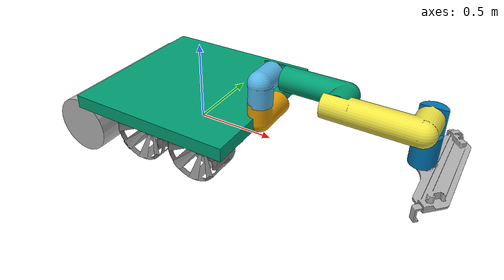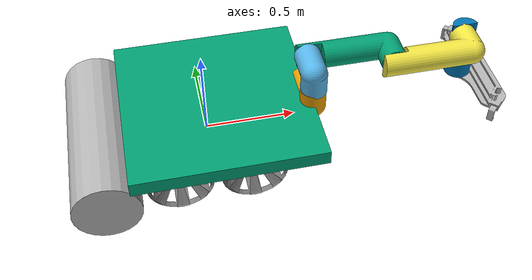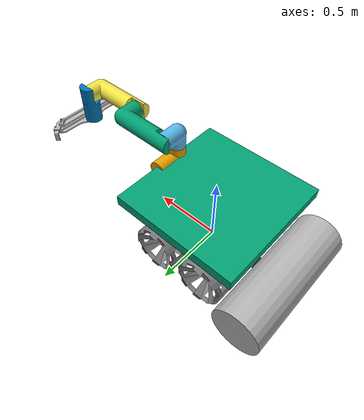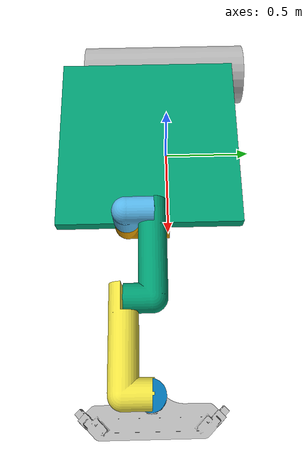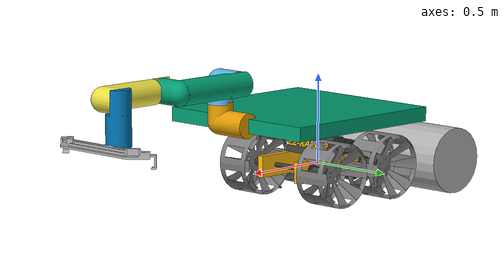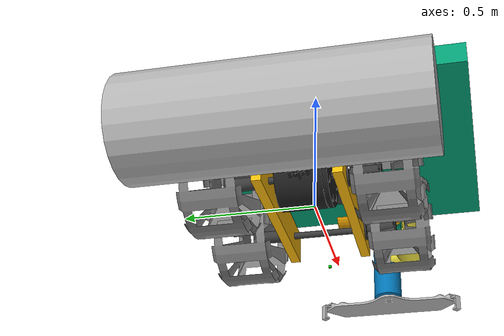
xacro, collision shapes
<?xml version='1.0'?>

<robot name="ezrassor" xmlns:xacro="http://www.ros.org/wiki/xacro">

  <xacro:property name="cameraSize" value="0.01"/>
  <xacro:property name="cameraMass" value="0.1"/>

  <xacro:include filename="$(find ezrassor_sim_description)/urdf/ezrassor.gazebo" />
  <xacro:include filename="$(find ezrassor_sim_description)/urdf/materials.xacro" />
  <xacro:include filename="$(find ezrassor_sim_description)/urdf/macros.xacro" />

  <!--Below are all of the robot's Links/-->
  <link name='base_link'>
   <pose>0 0 0 0 0 0</pose>
  </link>

  <link name='body'>
    <pose>0 0 0 0 0 0</pose>
    <inertial>
      <mass value="15.0"/>
      <origin xyz="0 0 0" rpy=" 0 0 0"/>
      <inertia
          ixx="0.5" ixy="0" ixz="0"
          iyy="1.0" iyz="0"
          izz="0.1"
      />
    </inertial>
    <collision name='collision'>
      <origin xyz="0 0 0" rpy=" 0 0 0"/>
      <geometry>
        <base_unit/>
      </geometry>
    </collision>
    <visual name='base_link_visual'>
      <origin xyz="0 0 0" rpy=" 0 0 0"/>
      <geometry>
        <base_unit/>
      </geometry>
    </visual>
  </link>

  <link name="left_wheel_front">
    <collision name="collision">
      <origin xyz="0 0 0" rpy="0 0 0"/>
      <geometry>
        <robot_wheel />
      </geometry>
      <surface>
        <friction>
          <mu> .6 </mu>
          <mu2> .6 </mu2>
        </friction>
      </surface>
      <surface>
        <friction>
          <mu> .6 </mu>
          <mu2> .6 </mu2>
        </friction>
      </surface>
    </collision>
    <visual name="left_wheel_front_visual">
      <origin xyz="0 0 0" rpy="0 0 0"/>
      <geometry>
        <robot_wheel />
      </geometry>
    </visual>
    <inertial>
      <origin xyz="0 0 0" rpy="0 0 0" />
      <mass value="5"/>
      <cylinder_inertia m="5" r="0.18" h="0.2"/>
    </inertial>
  </link>

  <link name="right_wheel_front">
    <collision name="collision">
      <origin xyz="0 0 0" rpy="0 0 3.14159"/>
      <geometry>
        <robot_wheel />
      </geometry>
      <surface>
        <friction>
        <mu> .6 </mu>
        <mu2> .6 </mu2>
        </friction>
      </surface>
    </collision>
    <visual name="right_wheel_front_visual">
      <origin xyz="0 0 0" rpy="0 0 3.14159"/>
      <geometry>
        <robot_wheel />
      </geometry>
    </visual>
    <inertial>
      <origin xyz="0 0 0" rpy="0 0 3.14159"/>
      <mass value="5"/>
      <cylinder_inertia m="5" r="0.18" h="0.2"/>
    </inertial>
  </link>

  <link name="left_wheel_back">
    <collision name="collision">
      <origin xyz="0 0 0" rpy="0 0 0"/>
      <geometry>
        <robot_wheel />
      </geometry>
        <surface>
          <friction>
            <mu> .6 </mu>
            <mu2> .6 </mu2>
         </friction>
        </surface>
    </collision>
    <visual name="left_wheel_back_visual">
      <origin xyz="0 0 0" rpy="0 0 0"/>
      <geometry>
        <robot_wheel />
      </geometry>
    </visual>
    <inertial>
      <origin xyz="0 0 0" rpy="0 0 0"/>
      <mass value="5"/>
      <cylinder_inertia m="5" r="0.18" h="0.2"/>
    </inertial>
  </link>

  <link name="right_wheel_back">
    <collision name="collision">
      <origin xyz="0 0 0" rpy="0 0 3.14159"/>
      <geometry>
        <robot_wheel />
      </geometry>
      <surface>
        <friction>
          <mu> .6 </mu>
          <mu2> .6 </mu2>
        </friction>
      </surface>
    </collision>
    <visual name="right_wheel_back_visual">
      <origin xyz="0 0 0" rpy="0 0 3.14159"/>
      <geometry>
        <robot_wheel />
      </geometry>
    </visual>
    <inertial>
      <origin xyz="0 0 0" rpy="0 0 3.14159"/>
      <mass value="5"/>
      <cylinder_inertia m="5" r="0.18" h="0.2"/>
    </inertial>
  </link>

  <link name="arm_back">
    <collision name="collision">
      <origin xyz="0 0 0" rpy="3.1415 0 3.1415"/>
      <geometry>
        <drum_arm />
      </geometry>
    </collision>
    <visual name="visual">
      <origin xyz="0 0 0" rpy="3.1415 0 3.1415"/>
      <geometry>
        <drum_arm />
      </geometry>
    </visual>
    <inertial>
      <origin xyz="0 0 0" rpy="0 0 3.1415"/>
      <mass value="5"/>
      <cylinder_inertia m="5" r="0.05" h="0.3"/>
      <inertia
        ixx="1.0" ixy="0.0" ixz="0.0"
        iyy="1.0" iyz="0.0"
        izz="1.0"/>
    </inertial>
  </link>

  <link name="drum_back">
     <collision name="collision">
      <origin xyz="0 0 0" rpy="0 1.5707 1.5707"/>
      <geometry>
        <cylinder radius="0.1839" length="1.0"/>
      </geometry>
    </collision>
    <visual name="drum_back">
      <origin xyz="0 0 0" rpy="3.1415 0 3.14159"/>
      <geometry>
        <robot_arm_drum />
      </geometry>
    </visual>
    <inertial>
      <origin xyz="0 0 0" rpy="0 0 3.14159"/>
      <mass value="5"/>
      <cylinder_inertia m="5" r="0.1839" h="1.0"/>
    </inertial>
  </link>

  <!-- Arm links -->

  <link name='link1'>
    <pose>0 0 0 0 0 0</pose>
    <inertial>
      <mass value="1.0"/>
      <origin xyz="0 0 0" rpy=" 0 0 0"/>
      <inertia
          ixx="0" ixy="0" ixz="0"
          iyy="0" iyz="0"
          izz="0"
      />
    </inertial>
    <collision name='collision'>
      <origin xyz="0 0 0" rpy=" 0 0 0"/>
      <geometry>
        <link1/>
      </geometry>
    </collision>
    <visual name='link1'>
      <origin xyz="0 0 0" rpy=" 0 0 0"/>
      <geometry>
        <link1/>
      </geometry>
    </visual>
  </link>

  <link name='link2'>
    <pose>0 0 0 0 0 0</pose>
    <inertial>
      <mass value="1.0"/>
      <origin xyz="0 0 0" rpy=" 0 0 0"/>
      <inertia
          ixx="0" ixy="0" ixz="0"
          iyy="0" iyz="0"
          izz="0"
      />
    </inertial>
    <collision name='collision'>
      <origin xyz="0 0.08 0.135" rpy=" 0 0 0"/>
      <geometry>
        <link2/>
      </geometry>
    </collision>
    <visual name='link2'>
      <origin xyz="0 0.08 0.135" rpy=" 0 0 0"/>
      <geometry>
        <link2/>
      </geometry>
    </visual>
  </link>

  <link name='link3'>
    <pose>0 0 0 0 0 0</pose>
    <inertial>
      <mass value="1.0"/>
      <origin xyz="0 0 0" rpy=" 0 0 0"/>
      <inertia
          ixx="0" ixy="0" ixz="0"
          iyy="0" iyz="0"
          izz="0"
      />
    </inertial>
    <collision name='collision'>
      <origin xyz="0.25 0.1 0" rpy=" 0 0 0"/>
      <geometry>
        <link3/>
      </geometry>
    </collision>
    <visual name='link3'>
      <origin xyz="0.25 0.1 0" rpy=" 0 0 0"/>
      <geometry>
        <link3/>
      </geometry>
    </visual>
  </link>

  <link name='link4'>
    <pose>0 0 0 0 0 0</pose>
    <inertial>
      <mass value="1.0"/>
      <origin xyz="0 0 0" rpy=" 0 0 0"/>
      <inertia
          ixx="0" ixy="0" ixz="0"
          iyy="0" iyz="0"
          izz="0"
      />
    </inertial>
    <collision name='collision'>
      <origin xyz="0.23 0 0" rpy=" 0 0 0"/>
      <geometry>
        <link4/>
      </geometry>
    </collision>
    <visual name='link4'>
      <origin xyz="0.23 0 0" rpy=" 0 0 0"/>
      <geometry>
        <link4/>
      </geometry>
    </visual>
  </link>

  <link name='link5'>
    <pose>0 0 0 0 0 0</pose>
    <inertial>
      <mass value="1.0"/>
      <origin xyz="0 0 0" rpy=" 0 0 0"/>
      <inertia
          ixx="0" ixy="0" ixz="0"
          iyy="0" iyz="0"
          izz="0"
      />
    </inertial>
    <collision name='collision'>
      <origin xyz="0 0.12 0" rpy=" 0 0 0"/>
      <geometry>
        <link5/>
      </geometry>
    </collision>
    <visual name='link5'>
      <origin xyz="0 0.12 0" rpy=" 0 0 0"/>
      <geometry>
        <link5/>
      </geometry>
    </visual>
  </link>

  <link name='link6'>
    <pose>0 0 0 0 0 0</pose>
    <inertial>
      <mass value="1.0"/>
      <origin xyz="0 0 0" rpy=" 0 0 0"/>
      <inertia
          ixx="0" ixy="0" ixz="0"
          iyy="0" iyz="0"
          izz="0"
      />
    </inertial>
    <collision name='collision'>
      <origin xyz="0.096 0 -0.24" rpy=" 0 0 0"/>
      <geometry>
        <link6/>
      </geometry>
    </collision>
    <visual name='link6'>
      <origin xyz="0.096 0 -0.24" rpy=" 0 0 0"/>
      <geometry>
        <link6/>
      </geometry>
    </visual>
  </link>

  <link name='arm_camera'>
    <pose>0 0 0 0 0 0</pose>
    <inertial>
      <mass value="0.1"/>
      <origin xyz="0.0 0.0 0.0" rpy=" 0 0 0"/>
      <inertia
          ixx="0" ixy="0" ixz="0"
          iyy="0" iyz="0"
          izz="0"
      />
    </inertial>
    <visual name='arm_camera'>
      <origin xyz="0.04 0.0 -0.04" rpy=" 0 0 0"/>
      <geometry>
        <arm_camera/>
      </geometry>
    </visual>
  </link>

  <link name='grabber1'>
    <pose>0 0 0 0 0 0</pose>
    <inertial>
      <mass value="0.1"/>
      <origin xyz="0 0 0" rpy=" 0 0 0"/>
      <inertia
          ixx="0" ixy="0" ixz="0"
          iyy="0" iyz="0"
          izz="0"
      />
    </inertial>
    <collision name='collision'>
      <origin xyz="0 0 0" rpy=" 0 0 0"/>
      <geometry>
        <grabber1/>
      </geometry>
      <contact_coefficients>
        <mu>1</mu>
      </contact_coefficients>
      <surface>
        <bounce>
          <restitution_coefficient>0</restitution_coefficient>
        </bounce>
        <friction>
          <ode>
            <fdir1>0 0 0</fdir1>
            <mu>1</mu>
            <mu2>1</mu2>
            <slip1>0</slip1>
            <slip2>0</slip2>
          </ode>
        </friction>
      </surface>
    </collision>
    <visual name='grabber1'>
      <origin xyz="0 0 0" rpy=" 0 0 0"/>
      <geometry>
        <grabber1/>
      </geometry>
    </visual>
  </link>

  <link name='grabber2'>
    <pose>0 0 0 0 0 0</pose>
    <inertial>
      <mass value="0.1"/>
      <origin xyz="0 0 0" rpy=" 0 0 0"/>
      <inertia
          ixx="0" ixy="0" ixz="0"
          iyy="0" iyz="0"
          izz="0"
      />
    </inertial>
    <collision name='collision'>
      <origin xyz="0 0 0" rpy=" 0 0 0"/>
      <geometry>
        <grabber2/>
      </geometry>
      <contact_coefficients>
        <mu>1</mu>
      </contact_coefficients>
      <surface>
        <bounce>
          <restitution_coefficient>0</restitution_coefficient>
        </bounce>
        <friction>
          <ode>
            <fdir1>0 0 0</fdir1>
            <mu>1</mu>
            <mu2>1</mu2>
            <slip1>0</slip1>
            <slip2>0</slip2>
          </ode>
        </friction>
      </surface>
    </collision>
    <visual name='grabber2'>
      <origin xyz="0 0 0" rpy=" 0 0 0"/>
      <geometry>
        <grabber2/>
      </geometry>
    </visual>
  </link>

  <link name='arm_front'>
    <pose>0 0 0 0 0 0</pose>
    <inertial>
      <mass value="1.0"/>
      <origin xyz="0 0 0" rpy=" 0 0 0"/>
      <inertia
          ixx="0" ixy="0" ixz="0"
          iyy="0" iyz="0"
          izz="0"
      />
    </inertial>
    <visual name='arm_front'>
      <origin xyz="0.2 0 0" rpy=" 0 -0.60 0"/>
      <geometry>
        <drum_arm/>
      </geometry>
    </visual>
  </link>

  <link name='platform'>
    <pose>0 0 0 0 0 0</pose>
    <inertial>
      <mass value="1.0"/>
      <origin xyz="0 0 0" rpy=" 0 0 0"/>
      <inertia
          ixx="0" ixy="0" ixz="0"
          iyy="0" iyz="0"
          izz="0"
      />
    </inertial>
    <collision name='collision'>
      <origin xyz="-0.5 0 0" rpy=" 0 0 0"/>
      <geometry>
        <box size="1 1 0.08"/>
      </geometry>
      <contact_coefficients>
        <mu>1</mu>
      </contact_coefficients>
    </collision>
    <visual name='platform'>
      <origin xyz="0.1 0.06 0.1" rpy=" 0 0 0"/>
      <geometry>
        <platform/>
      </geometry>
    </visual>
  </link>

  <!-- Transmissions -->
  <transmission name="left_wheel_front_tran">
    <type>transmission_interface/SimpleTransmission</type>
    <joint name="left_wheel_front_hinge">
      <hardwareInterface>hardware_interface/VelocityJointInterface</hardwareInterface>
    </joint>
    <actuator name="left_wheel_front_motor">
      <hardwareInterface>hardware_interface/VelocityJointInterface</hardwareInterface>
      <mechanicalReduction>1</mechanicalReduction>
    </actuator>
  </transmission>

  <transmission name="left_wheel_back_tran">
    <type>transmission_interface/SimpleTransmission</type>
    <joint name="left_wheel_back_hinge">
      <hardwareInterface>hardware_interface/VelocityJointInterface</hardwareInterface>
    </joint>
    <actuator name="left_wheel_back_motor">
      <hardwareInterface>hardware_interface/VelocityJointInterface</hardwareInterface>
      <mechanicalReduction>1</mechanicalReduction>
    </actuator>
  </transmission>

  <transmission name="right_wheel_front_tran">
    <type>transmission_interface/SimpleTransmission</type>
    <joint name="right_wheel_front_hinge">
      <hardwareInterface>hardware_interface/VelocityJointInterface</hardwareInterface>
    </joint>
    <actuator name="right_wheel_front_motor">
      <hardwareInterface>hardware_interface/VelocityJointInterface</hardwareInterface>
      <mechanicalReduction>1</mechanicalReduction>
    </actuator>
  </transmission>

  <transmission name="right_wheel_back_tran">
    <type>transmission_interface/SimpleTransmission</type>
    <joint name="right_wheel_back_hinge">
      <hardwareInterface>hardware_interface/VelocityJointInterface</hardwareInterface>
    </joint>
    <actuator name="right_wheel_back_motor">
      <hardwareInterface>hardware_interface/VelocityJointInterface</hardwareInterface>
      <mechanicalReduction>1</mechanicalReduction>
    </actuator>
  </transmission>

  <transmission name="arm_back_tran">
    <type>transmission_interface/SimpleTransmission</type>
    <joint name="arm_back_hinge">
      <hardwareInterface>hardware_interface/VelocityJointInterface</hardwareInterface>
    </joint>
    <actuator name="arm_back_motor">
      <hardwareInterface>hardware_interface/VelocityJointInterface</hardwareInterface>
      <mechanicalReduction>1</mechanicalReduction>
    </actuator>
  </transmission>

  <transmission name="drum_back_hinge_tran">
    <type>transmission_interface/SimpleTransmission</type>
    <joint name="drum_back_hinge">
      <hardwareInterface>hardware_interface/VelocityJointInterface</hardwareInterface>
    </joint>
    <actuator name="drum_back_hinge_motor">
      <hardwareInterface>hardware_interface/VelocityJointInterface</hardwareInterface>
      <mechanicalReduction>1</mechanicalReduction>
    </actuator>
  </transmission>

  <transmission name="joint1_tran">
    <type>transmission_interface/SimpleTransmission</type>
    <joint name="joint1">
      <hardwareInterface>hardware_interface/PositionJointInterface</hardwareInterface>
    </joint>
    <actuator name="joint1_motor">
      <hardwareInterface>hardware_interface/PositionJointInterface</hardwareInterface>
      <mechanicalReduction>1</mechanicalReduction>
    </actuator>
  </transmission>

  <transmission name="joint2_tran">
    <type>transmission_interface/SimpleTransmission</type>
    <joint name="joint2">
      <hardwareInterface>hardware_interface/PositionJointInterface</hardwareInterface>
    </joint>
    <actuator name="joint2_motor">
      <hardwareInterface>hardware_interface/PositionJointInterface</hardwareInterface>
      <mechanicalReduction>1</mechanicalReduction>
    </actuator>
  </transmission>

  <transmission name="joint3_tran">
    <type>transmission_interface/SimpleTransmission</type>
    <joint name="joint3">
      <hardwareInterface>hardware_interface/PositionJointInterface</hardwareInterface>
    </joint>
    <actuator name="joint3_motor">
      <hardwareInterface>hardware_interface/PositionJointInterface</hardwareInterface>
      <mechanicalReduction>1</mechanicalReduction>
    </actuator>
  </transmission>

  <transmission name="joint4_tran">
    <type>transmission_interface/SimpleTransmission</type>
    <joint name="joint4">
      <hardwareInterface>hardware_interface/PositionJointInterface</hardwareInterface>
    </joint>
    <actuator name="joint4_motor">
      <hardwareInterface>hardware_interface/PositionJointInterface</hardwareInterface>
      <mechanicalReduction>1</mechanicalReduction>
    </actuator>
  </transmission>

  <transmission name="joint5_tran">
    <type>transmission_interface/SimpleTransmission</type>
    <joint name="joint5">
      <hardwareInterface>hardware_interface/PositionJointInterface</hardwareInterface>
    </joint>
    <actuator name="joint5_motor">
      <hardwareInterface>hardware_interface/PositionJointInterface</hardwareInterface>
      <mechanicalReduction>1</mechanicalReduction>
    </actuator>
  </transmission>

  <transmission name="grabber1_tran">
    <type>transmission_interface/SimpleTransmission</type>
    <joint name="grabber_joint1">
      <hardwareInterface>hardware_interface/EffortJointInterface</hardwareInterface>
    </joint>
    <actuator name="grabber1_motor">
      <hardwareInterface>hardware_interface/EffortJointInterface</hardwareInterface>
      <mechanicalReduction>1</mechanicalReduction>
    </actuator>
  </transmission>

  <transmission name="grabber2_tran">
    <type>transmission_interface/SimpleTransmission</type>
    <joint name="grabber_joint2">
      <hardwareInterface>hardware_interface/EffortJointInterface</hardwareInterface>
    </joint>
    <actuator name="grabber2_motor">
      <hardwareInterface>hardware_interface/EffortJointInterface</hardwareInterface>
      <mechanicalReduction>1</mechanicalReduction>
    </actuator>
  </transmission>

  <!-- Front Camera Added -->
  <link name="depth_camera_front">
    <collision>
      <origin xyz="0 0 0" rpy="0 0 0"/>
      <geometry>
        <box size="${cameraSize} ${cameraSize} ${cameraSize}"/>
      </geometry>
    </collision>

    <visual>
      <origin xyz="0 0 0" rpy="0 0 0"/>
      <geometry>
        <box size="${cameraSize} ${cameraSize} ${cameraSize}"/>
      </geometry>
      <material name="green"/>
    </visual>

    <inertial>
      <mass value="${cameraMass}" />
      <origin xyz="0 0 0" rpy="0 0 0"/>
      <box_inertia m="${cameraMass}" x="${cameraSize}" y="${cameraSize}" z="${cameraSize}" />
      <inertia ixx="1e-6" ixy="0" ixz="0" iyy="1e-6" iyz="0" izz="1e-6" />
    </inertial>
  </link>

  <link name="imu_link">
    <collision>
      <origin xyz="0 0 0" rpy="0 0 0"/>
      <geometry>
        <box size="${cameraSize} ${cameraSize} ${cameraSize}"/>
      </geometry>
    </collision>

    <visual>
      <origin xyz="0 0 0" rpy="0 0 0"/>
      <geometry>
        <box size="${cameraSize} ${cameraSize} ${cameraSize}"/>
      </geometry>
      <material name="green"/>
    </visual>

    <inertial>
      <mass value="${cameraMass}" />
      <origin xyz="0 0 0" rpy="0 0 0"/>
      <box_inertia m="${cameraMass}" x="${cameraSize}" y="${cameraSize}" z="${cameraSize}" />
      <inertia ixx="1e-6" ixy="0" ixz="0" iyy="1e-6" iyz="0" izz="1e-6" />
    </inertial>
  </link>

  <joint name="body_joint" type="fixed">
    <axis xyz="0 0 0"/>
    <origin xyz="0 0 0" rpy="0 0 0"/>
    <parent link="base_link"/>
    <child link="body"/>
  </joint>

  <joint name="imu_joint" type="fixed">
    <axis xyz="0 0 0" />
    <origin xyz="0 0 0" rpy="0 0 0"/>
    <parent link="base_link"/>
    <child link="imu_link"/>
  </joint>

  <joint name="camera_front_joint" type="fixed">
    <origin xyz=".3 0 -.1" rpy="0 0 0"/>
    <axis xyz="0 1 0" />
    <parent link="base_link"/>
    <child link="depth_camera_front"/>
  </joint>

  <joint name="depth_camera_optical_joint" type="fixed">
	  <origin xyz="0 0 0" rpy="${-pi/2} 0 ${-pi/2}"/>
	  <parent link="depth_camera_front"/>
	  <child link="depth_camera_optical_frame"/>
  </joint>
  <link name="depth_camera_optical_frame"/>

  <joint type="continuous" name="left_wheel_front_hinge">
    <origin xyz="0.20 0.285 0" rpy="0 0 0"/>
    <child link="left_wheel_front"/>
    <parent link="base_link"/>
    <axis xyz="0 1 0" rpy="0 0 0"/>
    <limit effort="100" velocity="100"/>
    <joint_properties damping="0.0" friction="0.0"/>
  </joint>

  <joint type="continuous" name="right_wheel_front_hinge">
    <origin xyz="0.20 -0.285 0" rpy="0 0 0"/>
    <child link="right_wheel_front"/>
    <parent link="base_link"/>
    <axis xyz="0 1 0" rpy="0 0 0"/>
    <limit effort="100" velocity="100"/>
    <joint_properties damping="0.0" friction="0.0"/>
  </joint>

  <joint type="continuous" name="left_wheel_back_hinge">
    <origin xyz="-0.20 0.285 0" rpy="0 0 0"/>
    <child link="left_wheel_back"/>
    <parent link="base_link"/>
    <axis xyz="0 1 0" rpy="0 0 0"/>
    <limit effort="100" velocity="100"/>
    <joint_properties damping="0.0" friction="0.0"/>
  </joint>

  <joint type="continuous" name="right_wheel_back_hinge">
    <origin xyz="-0.20 -0.285 0" rpy="0 0 0"/>
    <child link="right_wheel_back"/>
    <parent link="base_link"/>
    <axis xyz="0 1 0" rpy="0 0 0"/>
    <limit effort="100" velocity="100"/>
    <joint_properties damping="0.0" friction="0.0"/>
  </joint>

  <joint type="continuous" name="arm_back_hinge">
    <origin xyz="-0.20 0 0" rpy="0 0 0"/>
    <child link="arm_back"/>
    <parent link="base_link"/>
    <axis xyz="0 1 0" rpy="0 0 0"/>
    <limit effort="100" velocity="100"/>
    <joint_properties damping="0.0" friction="0.0"/>
  </joint>

  <joint type="continuous" name="drum_back_hinge">
    <origin xyz="-0.388245 0 0" rpy="3.1415 0 0"/>
    <child link="drum_back"/>
    <parent link="arm_back"/>
    <axis xyz="0 1 0" rpy="0 0 0"/>
    <limit effort="100" velocity="100"/>
    <joint_properties damping="0.0" friction="0.0"/>
  </joint>

  <!-- ARM Joints-->

  <joint name="joint0" type="fixed">
    <axis xyz="0 0 0" />
    <origin xyz="0.55 -0.1 0.27" rpy="0 0 0"/>
    <parent link="base_link"/>
    <child link="link1"/>
  </joint>

  <joint name="joint0.1" type="fixed">
    <axis xyz="0 0 0" />
    <origin xyz="0 0 0" rpy="0 0 0"/>
    <parent link="base_link"/>
    <child link="arm_front"/>
  </joint>

  <joint type="continuous" name="joint1">
    <origin xyz="0 -0.12 0.09" rpy="0 0 0"/>
    <child link="link2"/>
    <parent link="link1"/>
    <axis xyz="0 0 1" rpy="0 0 0"/>
    <joint_properties damping="0.0" friction="0.0"/>
  </joint>

  <joint type="continuous" name="joint2">
    <origin xyz="0 0.037 0.13" rpy="0 0 0"/>
    <child link="link3"/>
    <parent link="link2"/>
    <axis xyz="0 1 0" rpy="0 0 0"/>
    <joint_properties damping="0.0" friction="0.0"/>
  </joint>

  <joint type="continuous" name="joint3">
    <origin xyz="0.44 -0.037 0" rpy="0 0 0"/>
    <child link="link4"/>
    <parent link="link3"/>
    <axis xyz="0 1 0" rpy="0 0 0"/>
    <joint_properties damping="0.0" friction="0.0"/>
  </joint>

  <joint type="continuous" name="joint4">
    <origin xyz="0.42 0.0 0" rpy="0 0 0"/>
    <child link="link5"/>
    <parent link="link4"/>
    <axis xyz="0 1 0" rpy="0 0 0"/>
    <joint_properties damping="0.0" friction="0.0"/>
  </joint>

  <joint type="continuous" name="joint5">
    <origin xyz="0 0.12 0" rpy="0 0 0"/>
    <child link="link6"/>
    <parent link="link5"/>
    <axis xyz="0 0 1" rpy="0 0 0"/>
    <joint_properties damping="0.0" friction="0.0"/>
  </joint>

  <joint name="arm_camera_joint" type="fixed">
    <axis xyz="0 0 0" />
    <origin xyz="0 0.4 0" rpy="0 0.4 0"/>
    <parent link="link1"/>
    <child link="arm_camera"/>
  </joint>

  <joint name="platform_joint" type="fixed">
    <axis xyz="0 0 0" />
    <origin xyz="0 0 0" rpy="0 0 0"/>
    <parent link="link1"/>
    <child link="platform"/>
  </joint>

  <joint type="prismatic" name="grabber_joint1">
    <origin xyz="0.1 -0.31 -0.24" rpy="0 0 0"/>
    <child link="grabber1"/>
    <parent link="link6"/>
    <axis xyz="1 1 0" rpy="0 0 0"/>
    <dynamics damping="1.0" friction="0.5"/>
    <limit lower="-0.02" upper="0.0224" effort="10" velocity="0.005"/>
  </joint>

  <joint type="prismatic" name="grabber_joint2">
    <origin xyz="0.1 0.31 -0.24" rpy="0 0 0"/>
    <child link="grabber2"/>
    <parent link="link6"/>
    <axis xyz="1 -1 0" rpy="0 0 0"/>
    <dynamics damping="1.0" friction="0.5"/>
    <limit lower="-0.02" upper="0.0225" effort="10" velocity="0.005"/>
  </joint>

</robot>

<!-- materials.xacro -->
<robot name="ezrassor" xmlns:xacro="http://www.ros.org/wiki/xacro">
  <material name="black">
    <color rgba="0.0 0.0 0.0 1.0"/>
  </material>

  <material name="blue">
    <color rgba="0.0 0.0 0.8 1.0"/>
  </material>

  <material name="green">
    <color rgba="0.0 0.8 0.0 1.0"/>
  </material>

  <material name="grey">
    <color rgba="0.2 0.2 0.2 1.0"/>
  </material>

  <material name="orange">
    <color rgba="${255/255} ${108/255} ${10/255} 1.0"/>
  </material>

  <material name="brown">
    <color rgba="${222/255} ${207/255} ${195/255} 1.0"/>
  </material>

  <material name="red">
    <color rgba="0.8 0.0 0.0 1.0"/>
  </material>

  <material name="white">
    <color rgba="1.0 1.0 1.0 1.0"/>
  </material>
</robot>

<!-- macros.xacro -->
<robot name="ezrassor" xmlns:xacro="http://www.ros.org/wiki/xacro">
    <!-- Inertia Tensors Used: https://en.wikipedia.org/wiki/List_of_moments_of_inertia#List_of_3D_inertia_tensors -->
    <xacro:macro name="cylinder_inertia" params="m r h">
    <inertia
        ixx="${m*((3*r*r)+(h*h))/12}" ixy = "0"                 ixz = "0"
                                  iyy="${m*((3*r*r)+(h*h))/12}" iyz = "0"
                                                            izz="${(m*(r*r))/2}"
    />
    </xacro:macro>

    <xacro:macro name="box_inertia" params="m x y z">
    <inertia  ixx="${m*(y*y+z*z)/12}" ixy = "0" ixz = "0"
        iyy="${m*(x*x+z*z)/12}" iyz = "0"
        izz="${m*(x*x+z*z)/12}"
    />
    </xacro:macro>

    <xacro:macro name="sphere_inertia" params="m r">
    <inertia  ixx="${2*m*r*r/5}" ixy = "0" ixz = "0"
        iyy="${2*m*r*r/5}" iyz = "0"
        izz="${2*m*r*r/5}"
    />
    </xacro:macro>

    <xacro:macro name="slender_rod_along_y_inertia" params="m l mass_about">
        <xacro:if value="${mass_about == 'end'}">
            <inertia
                ixx="${1/3*m*(l*l)}" ixy = "0"
                ixz = "0" iyy="0"
                iyz = "0" izz="${1/3*m*(l*l)}" />
        </xacro:if>
        <xacro:unless value="${mass_about == 'center'}">
            <inertia
                ixx="${1/12*m*(l*l)}" ixy = "0"
                ixz = "0" iyy="0"
                iyz = "0" izz="${1/12*m*(l*l)}" />
        </xacro:unless>
    </xacro:macro>

    <!-- VISUAL AND COLLISION MACROS -->
    <xacro:macro name="robot_arm">
        <mesh filename="package://ezrassor_sim_description/meshes/drum_arm_short.dae" scale="1.0 1.0 1.0"></mesh>
    </xacro:macro>

    <xacro:macro name="robot_arm_drum">
        <mesh filename="package://ezrassor_sim_description/meshes/drum.dae" scale="0.35 0.35 0.35"></mesh>
    </xacro:macro>

    <xacro:macro name="robot_wheel">
        <mesh filename="package://ezrassor_sim_description/meshes/wheel.dae" scale="0.35 0.35 0.35"></mesh>
    </xacro:macro>

    <xacro:macro name="base_unit">
        <mesh filename="package://ezrassor_sim_description/meshes/base_unit.dae" scale="0.35 0.35 0.35"></mesh>
    </xacro:macro>

    <xacro:macro name="drum_arm">
        <mesh filename="package://ezrassor_sim_description/meshes/drum_arm.dae" scale="0.35 0.35 0.35"></mesh>
    </xacro:macro>

<!-- ARM VISUAL AND COLLISION MACROS -->

    <xacro:macro name="link1">
        <mesh filename="package://ezrassor_sim_description/meshes/link1.dae" scale="0.35 0.35 0.35"></mesh>
    </xacro:macro>

    <xacro:macro name="link2">
        <mesh filename="package://ezrassor_sim_description/meshes/link2.dae" scale="0.35 0.35 0.35"></mesh>
    </xacro:macro>

    <xacro:macro name="link3">
        <mesh filename="package://ezrassor_sim_description/meshes/link3.dae" scale="0.35 0.35 0.35"></mesh>
    </xacro:macro>

    <xacro:macro name="link4">
        <mesh filename="package://ezrassor_sim_description/meshes/link4.dae" scale="0.35 0.35 0.35"></mesh>
    </xacro:macro>

    <xacro:macro name="link5">
        <mesh filename="package://ezrassor_sim_description/meshes/link5.dae" scale="0.35 0.35 0.35"></mesh>
    </xacro:macro>

    <xacro:macro name="link6">
        <mesh filename="package://ezrassor_sim_description/meshes/link6.1.dae" scale="0.35 0.35 0.45"></mesh>
    </xacro:macro>

    <xacro:macro name="arm_camera">
        <mesh filename="package://ezrassor_sim_description/meshes/arm_camera.dae" scale="0.35 0.35 0.35"></mesh>
    </xacro:macro>

    <xacro:macro name="grabber1">
        <mesh filename="package://ezrassor_sim_description/meshes/grabber1.dae" scale="0.35 0.35 0.35"></mesh>
    </xacro:macro>

    <xacro:macro name="grabber2">
        <mesh filename="package://ezrassor_sim_description/meshes/grabber2.dae" scale="0.35 0.35 0.35"></mesh>
    </xacro:macro>

    <xacro:macro name="platform">
        <mesh filename="package://ezrassor_sim_description/meshes/platform.dae" scale="2 2 2"></mesh>
    </xacro:macro>

</robot>
